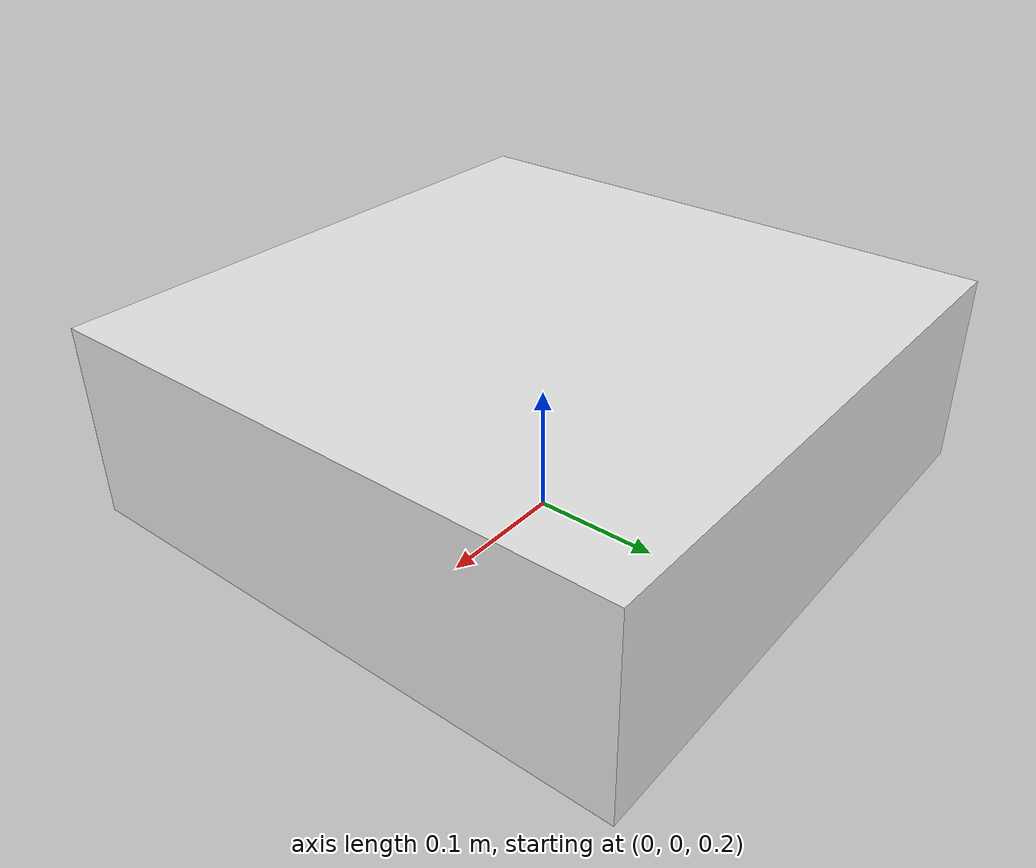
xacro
<?xml version="1.0"?>
<robot xmlns:xacro="http://www.ros.org/wiki/xacro">

  <!-- ============ Colors (converted to gz visual materials on spawn) ============ -->
  <material name="white"><color rgba="0.9 0.9 0.9 1"/></material>
  <material name="blue"><color rgba="0.15 0.35 0.9 1"/></material>
  <material name="dark"><color rgba="0.12 0.12 0.12 1"/></material>
  <material name="green"><color rgba="0.2 0.8 0.2 1"/></material>

  <!-- ============ base_footprint: ground-level reference frame ============ -->
  <link name="base_footprint"/>

  <!-- chassis center sits 0.297 m above the ground so the 5" wheels touch z=0 -->
  <joint name="base_joint" type="fixed">
    <parent link="base_footprint"/>
    <child link="base_link"/>
    <origin xyz="0 0 0.297" rpy="0 0 0"/>
  </joint>

  <!-- ============ base_link: chassis box 0.45 x 0.45 x 0.15 m ============ -->
  <link name="base_link">
    <visual>
      <geometry><box size="0.45 0.45 0.15"/></geometry>
      <material name="white"/>
    </visual>
    <collision>
      <geometry><box size="0.45 0.45 0.15"/></geometry>
    </collision>
    <xacro:inertial_box mass="6.0" x="0.45" y="0.45" z="0.15">
      <origin xyz="0 0 0" rpy="0 0 0"/>
    </xacro:inertial_box>
  </link>

</robot>
